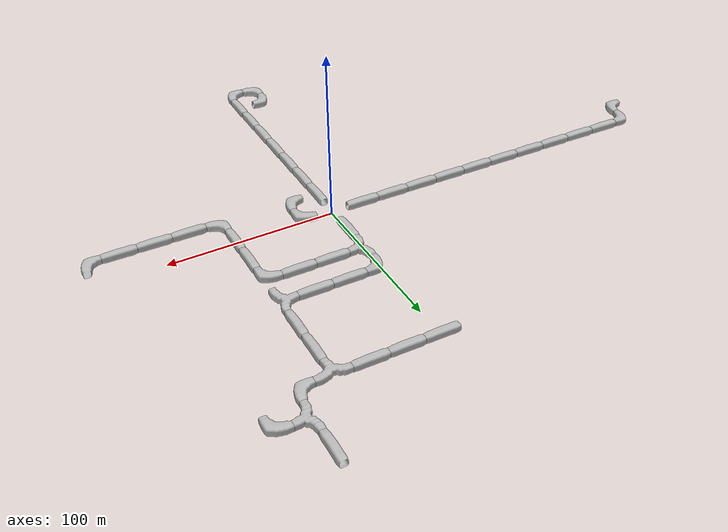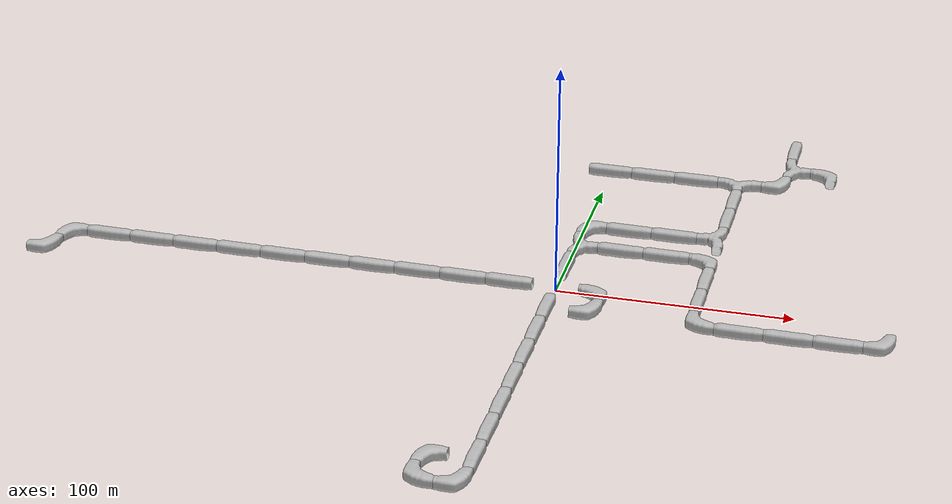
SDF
<sdf version="1.6">
 <world name="cave_1000">
  <include>
   <static>true</static>
   <name>cave_1_0</name>
   <pose>20 0 0 0 0 3.141592653589793</pose>
   <uri>model://cave_L_20m</uri>
  </include>
  <include>
   <static>true</static>
   <name>cave_1_-1</name>
   <pose>20 -20 0 0 0 1.5707963267948966</pose>
   <uri>model://cave_L_20m</uri>
  </include>
  <include>
   <static>true</static>
   <name>cave_0_-1</name>
   <pose>0 -20 0 0 0 0.0</pose>
   <uri>model://cave_straight_20m</uri>
  </include>
  <include>
   <static>true</static>
   <name>cave_0_-2</name>
   <pose>0 -40 0 0 0 0.0</pose>
   <uri>model://cave_straight_20m</uri>
  </include>
  <include>
   <static>true</static>
   <name>cave_0_-3</name>
   <pose>0 -60 0 0 0 0.0</pose>
   <uri>model://cave_straight_20m</uri>
  </include>
  <include>
   <static>true</static>
   <name>cave_0_-4</name>
   <pose>0 -80 0 0 0 0.0</pose>
   <uri>model://cave_straight_20m</uri>
  </include>
  <include>
   <static>true</static>
   <name>cave_0_-5</name>
   <pose>0 -100 0 0 0 0.0</pose>
   <uri>model://cave_straight_20m</uri>
  </include>
  <include>
   <static>true</static>
   <name>cave_0_-6</name>
   <pose>0 -120 0 0 0 0.0</pose>
   <uri>model://cave_straight_20m</uri>
  </include>
  <include>
   <static>true</static>
   <name>cave_0_-7</name>
   <pose>0 -140 0 0 0 0.0</pose>
   <uri>model://cave_straight_20m</uri>
  </include>
  <include>
   <static>true</static>
   <name>cave_0_-8</name>
   <pose>0 -160 0 0 0 1.5707963267948966</pose>
   <uri>model://cave_L_20m</uri>
  </include>
  <include>
   <static>true</static>
   <name>cave_-1_-8</name>
   <pose>-20 -160 0 0 0 0.0</pose>
   <uri>model://cave_L_20m</uri>
  </include>
  <include>
   <static>true</static>
   <name>cave_-1_-7</name>
   <pose>-20 -140 0 0 0 -1.5707963267948966</pose>
   <uri>model://cave_L_20m</uri>
  </include>
  <include>
   <static>true</static>
   <name>cave_-1_0</name>
   <pose>-20 0 0 0 0 1.5707963267948966</pose>
   <uri>model://cave_straight_20m</uri>
  </include>
  <include>
   <static>true</static>
   <name>cave_-2_0</name>
   <pose>-40 0 0 0 0 1.5707963267948966</pose>
   <uri>model://cave_straight_20m</uri>
  </include>
  <include>
   <static>true</static>
   <name>cave_-3_0</name>
   <pose>-60 0 0 0 0 1.5707963267948966</pose>
   <uri>model://cave_straight_20m</uri>
  </include>
  <include>
   <static>true</static>
   <name>cave_-4_0</name>
   <pose>-80 0 0 0 0 1.5707963267948966</pose>
   <uri>model://cave_straight_20m</uri>
  </include>
  <include>
   <static>true</static>
   <name>cave_-5_0</name>
   <pose>-100 0 0 0 0 1.5707963267948966</pose>
   <uri>model://cave_straight_20m</uri>
  </include>
  <include>
   <static>true</static>
   <name>cave_-6_0</name>
   <pose>-120 0 0 0 0 1.5707963267948966</pose>
   <uri>model://cave_straight_20m</uri>
  </include>
  <include>
   <static>true</static>
   <name>cave_-7_0</name>
   <pose>-140 0 0 0 0 1.5707963267948966</pose>
   <uri>model://cave_straight_20m</uri>
  </include>
  <include>
   <static>true</static>
   <name>cave_-8_0</name>
   <pose>-160 0 0 0 0 1.5707963267948966</pose>
   <uri>model://cave_straight_20m</uri>
  </include>
  <include>
   <static>true</static>
   <name>cave_-9_0</name>
   <pose>-180 0 0 0 0 1.5707963267948966</pose>
   <uri>model://cave_straight_20m</uri>
  </include>
  <include>
   <static>true</static>
   <name>cave_-10_0</name>
   <pose>-200 0 0 0 0 1.5707963267948966</pose>
   <uri>model://cave_straight_20m</uri>
  </include>
  <include>
   <static>true</static>
   <name>cave_-11_0</name>
   <pose>-220 0 0 0 0 -1.5707963267948966</pose>
   <uri>model://cave_L_20m</uri>
  </include>
  <include>
   <static>true</static>
   <name>cave_-11_-1</name>
   <pose>-220 -20 0 0 0 1.5707963267948966</pose>
   <uri>model://cave_L_20m</uri>
  </include>
  <include>
   <static>true</static>
   <name>cave_0_1</name>
   <pose>0 20 0 0 0 0.0</pose>
   <uri>model://cave_straight_20m</uri>
  </include>
  <include>
   <static>true</static>
   <name>cave_0_2</name>
   <pose>0 40 0 0 0 -1.5707963267948966</pose>
   <uri>model://cave_3way_20m</uri>
  </include>
  <include>
   <static>true</static>
   <name>cave_1_2</name>
   <pose>20 40 0 0 0 1.5707963267948966</pose>
   <uri>model://cave_straight_20m</uri>
  </include>
  <include>
   <static>true</static>
   <name>cave_2_2</name>
   <pose>40 40 0 0 0 1.5707963267948966</pose>
   <uri>model://cave_straight_20m</uri>
  </include>
  <include>
   <static>true</static>
   <name>cave_3_2</name>
   <pose>60 40 0 0 0 3.141592653589793</pose>
   <uri>model://cave_L_20m</uri>
  </include>
  <include>
   <static>true</static>
   <name>cave_3_1</name>
   <pose>60 20 0 0 0 0.0</pose>
   <uri>model://cave_straight_20m</uri>
  </include>
  <include>
   <static>true</static>
   <name>cave_3_0</name>
   <pose>60 0 0 0 0 0.0</pose>
   <uri>model://cave_straight_20m</uri>
  </include>
  <include>
   <static>true</static>
   <name>cave_3_-1</name>
   <pose>60 -20 0 0 0 0.0</pose>
   <uri>model://cave_L_20m</uri>
  </include>
  <include>
   <static>true</static>
   <name>cave_4_-1</name>
   <pose>80 -20 0 0 0 1.5707963267948966</pose>
   <uri>model://cave_straight_20m</uri>
  </include>
  <include>
   <static>true</static>
   <name>cave_5_-1</name>
   <pose>100 -20 0 0 0 1.5707963267948966</pose>
   <uri>model://cave_straight_20m</uri>
  </include>
  <include>
   <static>true</static>
   <name>cave_6_-1</name>
   <pose>120 -20 0 0 0 1.5707963267948966</pose>
   <uri>model://cave_straight_20m</uri>
  </include>
  <include>
   <static>true</static>
   <name>cave_7_-1</name>
   <pose>140 -20 0 0 0 1.5707963267948966</pose>
   <uri>model://cave_L_20m</uri>
  </include>
  <include>
   <static>true</static>
   <name>cave_0_3</name>
   <pose>0 60 0 0 0 -1.5707963267948966</pose>
   <uri>model://cave_L_20m</uri>
  </include>
  <include>
   <static>true</static>
   <name>cave_1_3</name>
   <pose>20 60 0 0 0 1.5707963267948966</pose>
   <uri>model://cave_straight_20m</uri>
  </include>
  <include>
   <static>true</static>
   <name>cave_2_3</name>
   <pose>40 60 0 0 0 1.5707963267948966</pose>
   <uri>model://cave_straight_20m</uri>
  </include>
  <include>
   <static>true</static>
   <name>cave_3_3</name>
   <pose>60 60 0 0 0 1.5707963267948966</pose>
   <uri>model://cave_3way_20m</uri>
  </include>
  <include>
   <static>true</static>
   <name>cave_3_4</name>
   <pose>60 80 0 0 0 0.0</pose>
   <uri>model://cave_straight_20m</uri>
  </include>
  <include>
   <static>true</static>
   <name>cave_3_5</name>
   <pose>60 100 0 0 0 0.0</pose>
   <uri>model://cave_straight_20m</uri>
  </include>
  <include>
   <static>true</static>
   <name>cave_3_6</name>
   <pose>60 120 0 0 0 3.141592653589793</pose>
   <uri>model://cave_3way_20m</uri>
  </include>
  <include>
   <static>true</static>
   <name>cave_4_6</name>
   <pose>80 120 0 0 0 1.5707963267948966</pose>
   <uri>model://cave_L_20m</uri>
  </include>
  <include>
   <static>true</static>
   <name>cave_4_7</name>
   <pose>80 140 0 0 0 -1.5707963267948966</pose>
   <uri>model://cave_3way_20m</uri>
  </include>
  <include>
   <static>true</static>
   <name>cave_5_7</name>
   <pose>100 140 0 0 0 3.141592653589793</pose>
   <uri>model://cave_L_20m</uri>
  </include>
  <include>
   <static>true</static>
   <name>cave_4_8</name>
   <pose>80 160 0 0 0 0.0</pose>
   <uri>model://cave_straight_20m</uri>
  </include>
  <include>
   <static>true</static>
   <name>cave_2_6</name>
   <pose>40 120 0 0 0 1.5707963267948966</pose>
   <uri>model://cave_straight_20m</uri>
  </include>
  <include>
   <static>true</static>
   <name>cave_1_6</name>
   <pose>20 120 0 0 0 1.5707963267948966</pose>
   <uri>model://cave_straight_20m</uri>
  </include>
  <include>
   <static>true</static>
   <name>cave_0_6</name>
   <pose>0 120 0 0 0 1.5707963267948966</pose>
   <uri>model://cave_straight_20m</uri>
  </include>
 </world>
</sdf>

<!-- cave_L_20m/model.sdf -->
<sdf version="1.6">
  <model name="cave_L_20m">
    <static>true</static>
    <link name="base">
      <pose>0 0 0 0 0 0</pose>
      <collision name="base_collision">
        <pose>0 0 0 0 0 0</pose>
        <geometry>
          <mesh>
            <uri>model://cave_L_20m/meshes/cave_L_20m.dae</uri>
          </mesh>
        </geometry>
        <surface>
          <contact>
             <collide_bitmask>0xffff</collide_bitmask>
          </contact>
          <friction>
            <ode>
              <mu>100</mu>
              <mu2>50</mu2>
            </ode>
          </friction>
        </surface>
      </collision>
      <visual name="base_visual">
        <pose>0 0 0 0 0 0</pose>
        <cast_shadows>false</cast_shadows>
        <geometry>
          <mesh>
            <uri>model://cave_L_20m/meshes/cave_L_20m.dae</uri>
          </mesh>
        </geometry>
      </visual>
    </link>
  </model>
</sdf>

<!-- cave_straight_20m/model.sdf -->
<sdf version="1.6">
  <model name="cave_straight_20m">
    <static>true</static>
    <link name="base">
      <pose>0 0 0 0 0 0</pose>
      <collision name="base_collision">
        <pose>0 0 0 0 0 0</pose>
        <geometry>
          <mesh>
            <uri>model://cave_straight_20m/meshes/cave_straight_20m.dae</uri>
          </mesh>
        </geometry>
        <surface>
          <contact>
             <collide_bitmask>0xffff</collide_bitmask>
          </contact>
          <friction>
            <ode>
              <mu>100</mu>
              <mu2>50</mu2>
            </ode>
          </friction>
        </surface>
      </collision>
      <visual name="base_visual">
        <pose>0 0 0 0 0 0</pose>
        <cast_shadows>false</cast_shadows>
        <geometry>
          <mesh>
            <uri>model://cave_straight_20m/meshes/cave_straight_20m.dae</uri>
          </mesh>
        </geometry>
      </visual>
    </link>
  </model>
</sdf>

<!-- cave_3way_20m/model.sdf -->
<sdf version="1.6">
  <model name="cave_3way_20m">
    <static>true</static>
    <link name="base">
      <pose>0 0 0 0 0 0</pose>
      <collision name="base_collision">
        <pose>0 0 0 0 0 0</pose>
        <geometry>
          <mesh>
            <uri>model://cave_3way_20m/meshes/cave_3way_20m.dae</uri>
          </mesh>
        </geometry>
        <surface>
          <contact>
             <collide_bitmask>0xffff</collide_bitmask>
          </contact>
          <friction>
            <ode>
              <mu>100</mu>
              <mu2>50</mu2>
            </ode>
          </friction>
        </surface>
      </collision>
      <visual name="base_visual">
        <cast_shadows>false</cast_shadows>
        <pose>0 0 0 0 0 0</pose>
        <geometry>
          <mesh>
            <uri>model://cave_3way_20m/meshes/cave_3way_20m.dae</uri>
          </mesh>
        </geometry>
      </visual>
    </link>
  </model>
</sdf>
